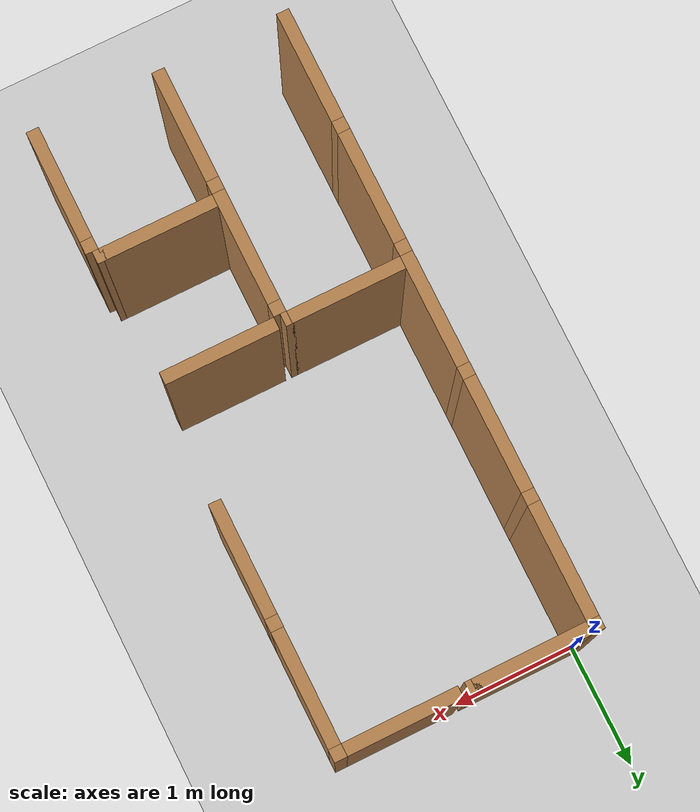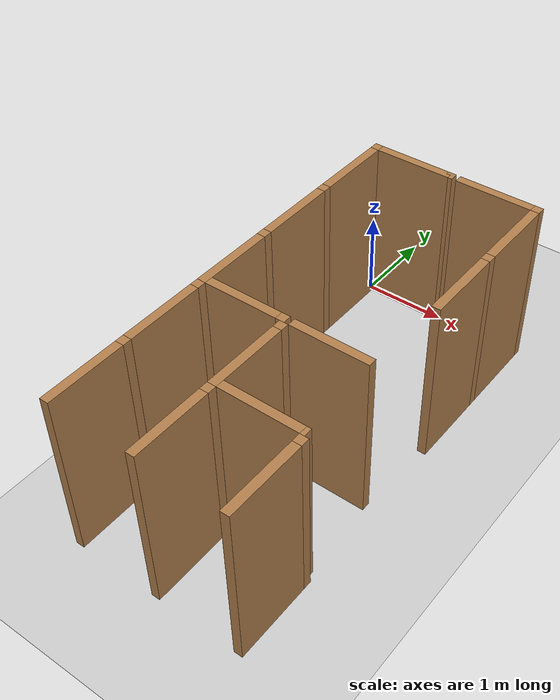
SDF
<sdf version="1.6">
 <world name="default">
  <include><uri>model://sun</uri></include>
  <model name="ground_plane">
   <static>true</static>
   <link name="link">
    <collision name="collision"><geometry><plane><size>12.0 12.0</size></plane></geometry></collision>
    <visual name="visual">
     <cast_shadows>false</cast_shadows>
     <geometry><plane><size>12.0 12.0</size></plane></geometry>
     <material>
      <script><uri>file://media/materials/scripts/gazebo.material</uri><name>Gazebo/Grey</name></script>
     </material>
    </visual>
   </link>
   <pose>6.0 -6.0 0 0 0 0</pose>
  </model>
  <model name="vwall_0_0">
   <pose>0.0 -0.5 1.0 0 0 0</pose>
   <link name="link">
    <collision name="collision"><geometry><box><size>0.1 0.9 2</size></box></geometry></collision>
    <visual name="visual">
     <geometry><box><size>0.1 0.9 2</size></box></geometry>
     <material>
      <script><uri>file://media/materials/scripts/gazebo.material</uri><name>Gazebo/Wood</name></script>
     </material>
    </visual>
   </link>
  </model>
  <model name="joint_0.0_0.0">
   <pose>0.0 0.0 1.0 0 0 0</pose>
   <link name="link">
    <collision name="collision"><geometry><box><size>0.1 0.1 2</size></box></geometry></collision>
    <visual name="visual">
     <geometry><box><size>0.1 0.1 2</size></box></geometry>
     <material>
      <script><uri>file://media/materials/scripts/gazebo.material</uri><name>Gazebo/Wood</name></script>
     </material>
    </visual>
   </link>
  </model>
  <model name="vwall_0_2">
   <pose>2.0 -0.5 1.0 0 0 0</pose>
   <link name="link">
    <collision name="collision"><geometry><box><size>0.1 0.9 2</size></box></geometry></collision>
    <visual name="visual">
     <geometry><box><size>0.1 0.9 2</size></box></geometry>
     <material>
      <script><uri>file://media/materials/scripts/gazebo.material</uri><name>Gazebo/Wood</name></script>
     </material>
    </visual>
   </link>
  </model>
  <model name="joint_2.0_0.0">
   <pose>2.0 0.0 1.0 0 0 0</pose>
   <link name="link">
    <collision name="collision"><geometry><box><size>0.1 0.1 2</size></box></geometry></collision>
    <visual name="visual">
     <geometry><box><size>0.1 0.1 2</size></box></geometry>
     <material>
      <script><uri>file://media/materials/scripts/gazebo.material</uri><name>Gazebo/Wood</name></script>
     </material>
    </visual>
   </link>
  </model>
  <model name="vwall_1_0">
   <pose>0.0 -1.5 1.0 0 0 0</pose>
   <link name="link">
    <collision name="collision"><geometry><box><size>0.1 0.9 2</size></box></geometry></collision>
    <visual name="visual">
     <geometry><box><size>0.1 0.9 2</size></box></geometry>
     <material>
      <script><uri>file://media/materials/scripts/gazebo.material</uri><name>Gazebo/Wood</name></script>
     </material>
    </visual>
   </link>
  </model>
  <model name="joint_0.0_-1.0">
   <pose>0.0 -1.0 1.0 0 0 0</pose>
   <link name="link">
    <collision name="collision"><geometry><box><size>0.1 0.1 2</size></box></geometry></collision>
    <visual name="visual">
     <geometry><box><size>0.1 0.1 2</size></box></geometry>
     <material>
      <script><uri>file://media/materials/scripts/gazebo.material</uri><name>Gazebo/Wood</name></script>
     </material>
    </visual>
   </link>
  </model>
  <model name="vwall_1_2">
   <pose>2.0 -1.5 1.0 0 0 0</pose>
   <link name="link">
    <collision name="collision"><geometry><box><size>0.1 0.9 2</size></box></geometry></collision>
    <visual name="visual">
     <geometry><box><size>0.1 0.9 2</size></box></geometry>
     <material>
      <script><uri>file://media/materials/scripts/gazebo.material</uri><name>Gazebo/Wood</name></script>
     </material>
    </visual>
   </link>
  </model>
  <model name="joint_2.0_-1.0">
   <pose>2.0 -1.0 1.0 0 0 0</pose>
   <link name="link">
    <collision name="collision"><geometry><box><size>0.1 0.1 2</size></box></geometry></collision>
    <visual name="visual">
     <geometry><box><size>0.1 0.1 2</size></box></geometry>
     <material>
      <script><uri>file://media/materials/scripts/gazebo.material</uri><name>Gazebo/Wood</name></script>
     </material>
    </visual>
   </link>
  </model>
  <model name="vwall_2_0">
   <pose>0.0 -2.5 1.0 0 0 0</pose>
   <link name="link">
    <collision name="collision"><geometry><box><size>0.1 0.9 2</size></box></geometry></collision>
    <visual name="visual">
     <geometry><box><size>0.1 0.9 2</size></box></geometry>
     <material>
      <script><uri>file://media/materials/scripts/gazebo.material</uri><name>Gazebo/Wood</name></script>
     </material>
    </visual>
   </link>
  </model>
  <model name="joint_0.0_-2.0">
   <pose>0.0 -2.0 1.0 0 0 0</pose>
   <link name="link">
    <collision name="collision"><geometry><box><size>0.1 0.1 2</size></box></geometry></collision>
    <visual name="visual">
     <geometry><box><size>0.1 0.1 2</size></box></geometry>
     <material>
      <script><uri>file://media/materials/scripts/gazebo.material</uri><name>Gazebo/Wood</name></script>
     </material>
    </visual>
   </link>
  </model>
  <model name="vwall_3_0">
   <pose>0.0 -3.5 1.0 0 0 0</pose>
   <link name="link">
    <collision name="collision"><geometry><box><size>0.1 0.9 2</size></box></geometry></collision>
    <visual name="visual">
     <geometry><box><size>0.1 0.9 2</size></box></geometry>
     <material>
      <script><uri>file://media/materials/scripts/gazebo.material</uri><name>Gazebo/Wood</name></script>
     </material>
    </visual>
   </link>
  </model>
  <model name="joint_0.0_-3.0">
   <pose>0.0 -3.0 1.0 0 0 0</pose>
   <link name="link">
    <collision name="collision"><geometry><box><size>0.1 0.1 2</size></box></geometry></collision>
    <visual name="visual">
     <geometry><box><size>0.1 0.1 2</size></box></geometry>
     <material>
      <script><uri>file://media/materials/scripts/gazebo.material</uri><name>Gazebo/Wood</name></script>
     </material>
    </visual>
   </link>
  </model>
  <model name="vwall_3_1">
   <pose>1.0 -3.5 1.0 0 0 0</pose>
   <link name="link">
    <collision name="collision"><geometry><box><size>0.1 0.9 2</size></box></geometry></collision>
    <visual name="visual">
     <geometry><box><size>0.1 0.9 2</size></box></geometry>
     <material>
      <script><uri>file://media/materials/scripts/gazebo.material</uri><name>Gazebo/Wood</name></script>
     </material>
    </visual>
   </link>
  </model>
  <model name="joint_1.0_-3.0">
   <pose>1.0 -3.0 1.0 0 0 0</pose>
   <link name="link">
    <collision name="collision"><geometry><box><size>0.1 0.1 2</size></box></geometry></collision>
    <visual name="visual">
     <geometry><box><size>0.1 0.1 2</size></box></geometry>
     <material>
      <script><uri>file://media/materials/scripts/gazebo.material</uri><name>Gazebo/Wood</name></script>
     </material>
    </visual>
   </link>
  </model>
  <model name="vwall_4_0">
   <pose>0.0 -4.5 1.0 0 0 0</pose>
   <link name="link">
    <collision name="collision"><geometry><box><size>0.1 0.9 2</size></box></geometry></collision>
    <visual name="visual">
     <geometry><box><size>0.1 0.9 2</size></box></geometry>
     <material>
      <script><uri>file://media/materials/scripts/gazebo.material</uri><name>Gazebo/Wood</name></script>
     </material>
    </visual>
   </link>
  </model>
  <model name="joint_0.0_-4.0">
   <pose>0.0 -4.0 1.0 0 0 0</pose>
   <link name="link">
    <collision name="collision"><geometry><box><size>0.1 0.1 2</size></box></geometry></collision>
    <visual name="visual">
     <geometry><box><size>0.1 0.1 2</size></box></geometry>
     <material>
      <script><uri>file://media/materials/scripts/gazebo.material</uri><name>Gazebo/Wood</name></script>
     </material>
    </visual>
   </link>
  </model>
  <model name="vwall_4_1">
   <pose>1.0 -4.5 1.0 0 0 0</pose>
   <link name="link">
    <collision name="collision"><geometry><box><size>0.1 0.9 2</size></box></geometry></collision>
    <visual name="visual">
     <geometry><box><size>0.1 0.9 2</size></box></geometry>
     <material>
      <script><uri>file://media/materials/scripts/gazebo.material</uri><name>Gazebo/Wood</name></script>
     </material>
    </visual>
   </link>
  </model>
  <model name="joint_1.0_-4.0">
   <pose>1.0 -4.0 1.0 0 0 0</pose>
   <link name="link">
    <collision name="collision"><geometry><box><size>0.1 0.1 2</size></box></geometry></collision>
    <visual name="visual">
     <geometry><box><size>0.1 0.1 2</size></box></geometry>
     <material>
      <script><uri>file://media/materials/scripts/gazebo.material</uri><name>Gazebo/Wood</name></script>
     </material>
    </visual>
   </link>
  </model>
  <model name="vwall_4_2">
   <pose>2.0 -4.5 1.0 0 0 0</pose>
   <link name="link">
    <collision name="collision"><geometry><box><size>0.1 0.9 2</size></box></geometry></collision>
    <visual name="visual">
     <geometry><box><size>0.1 0.9 2</size></box></geometry>
     <material>
      <script><uri>file://media/materials/scripts/gazebo.material</uri><name>Gazebo/Wood</name></script>
     </material>
    </visual>
   </link>
  </model>
  <model name="joint_2.0_-4.0">
   <pose>2.0 -4.0 1.0 0 0 0</pose>
   <link name="link">
    <collision name="collision"><geometry><box><size>0.1 0.1 2</size></box></geometry></collision>
    <visual name="visual">
     <geometry><box><size>0.1 0.1 2</size></box></geometry>
     <material>
      <script><uri>file://media/materials/scripts/gazebo.material</uri><name>Gazebo/Wood</name></script>
     </material>
    </visual>
   </link>
  </model>
  <model name="hwall_0_0">
   <pose>0.5 0.0 1.0 0 0 0</pose>
   <link name="link">
    <collision name="collision"><geometry><box><size>0.9 0.1 2</size></box></geometry></collision>
    <visual name="visual">
     <geometry><box><size>0.9 0.1 2</size></box></geometry>
     <material>
      <script><uri>file://media/materials/scripts/gazebo.material</uri><name>Gazebo/Wood</name></script>
     </material>
    </visual>
   </link>
  </model>
  <model name="joint_0.95_0.0">
   <pose>0.95 0.0 1.0 0 0 0</pose>
   <link name="link">
    <collision name="collision"><geometry><box><size>0.1 0.1 2</size></box></geometry></collision>
    <visual name="visual">
     <geometry><box><size>0.1 0.1 2</size></box></geometry>
     <material>
      <script><uri>file://media/materials/scripts/gazebo.material</uri><name>Gazebo/Wood</name></script>
     </material>
    </visual>
   </link>
  </model>
  <model name="hwall_0_1">
   <pose>1.5 0.0 1.0 0 0 0</pose>
   <link name="link">
    <collision name="collision"><geometry><box><size>0.9 0.1 2</size></box></geometry></collision>
    <visual name="visual">
     <geometry><box><size>0.9 0.1 2</size></box></geometry>
     <material>
      <script><uri>file://media/materials/scripts/gazebo.material</uri><name>Gazebo/Wood</name></script>
     </material>
    </visual>
   </link>
  </model>
  <model name="hwall_2_0">
   <pose>0.5 -2.9 1.0 0 0 0</pose>
   <link name="link">
    <collision name="collision"><geometry><box><size>0.9 0.1 2</size></box></geometry></collision>
    <visual name="visual">
     <geometry><box><size>0.9 0.1 2</size></box></geometry>
     <material>
      <script><uri>file://media/materials/scripts/gazebo.material</uri><name>Gazebo/Wood</name></script>
     </material>
    </visual>
   </link>
  </model>
  <model name="joint_0.95_-2.9">
   <pose>0.95 -2.9 1.0 0 0 0</pose>
   <link name="link">
    <collision name="collision"><geometry><box><size>0.1 0.1 2</size></box></geometry></collision>
    <visual name="visual">
     <geometry><box><size>0.1 0.1 2</size></box></geometry>
     <material>
      <script><uri>file://media/materials/scripts/gazebo.material</uri><name>Gazebo/Wood</name></script>
     </material>
    </visual>
   </link>
  </model>
  <model name="hwall_2_1">
   <pose>1.5 -2.9 1.0 0 0 0</pose>
   <link name="link">
    <collision name="collision"><geometry><box><size>0.9 0.1 2</size></box></geometry></collision>
    <visual name="visual">
     <geometry><box><size>0.9 0.1 2</size></box></geometry>
     <material>
      <script><uri>file://media/materials/scripts/gazebo.material</uri><name>Gazebo/Wood</name></script>
     </material>
    </visual>
   </link>
  </model>
  <model name="hwall_3_1">
   <pose>1.5 -3.9 1.0 0 0 0</pose>
   <link name="link">
    <collision name="collision"><geometry><box><size>0.9 0.1 2</size></box></geometry></collision>
    <visual name="visual">
     <geometry><box><size>0.9 0.1 2</size></box></geometry>
     <material>
      <script><uri>file://media/materials/scripts/gazebo.material</uri><name>Gazebo/Wood</name></script>
     </material>
    </visual>
   </link>
  </model>
  <model name="joint_1.95_-3.9">
   <pose>1.95 -3.9 1.0 0 0 0</pose>
   <link name="link">
    <collision name="collision"><geometry><box><size>0.1 0.1 2</size></box></geometry></collision>
    <visual name="visual">
     <geometry><box><size>0.1 0.1 2</size></box></geometry>
     <material>
      <script><uri>file://media/materials/scripts/gazebo.material</uri><name>Gazebo/Wood</name></script>
     </material>
    </visual>
   </link>
  </model>
 </world>
</sdf>
